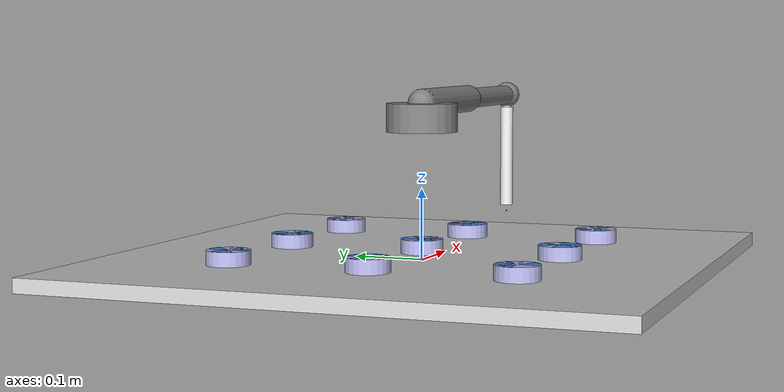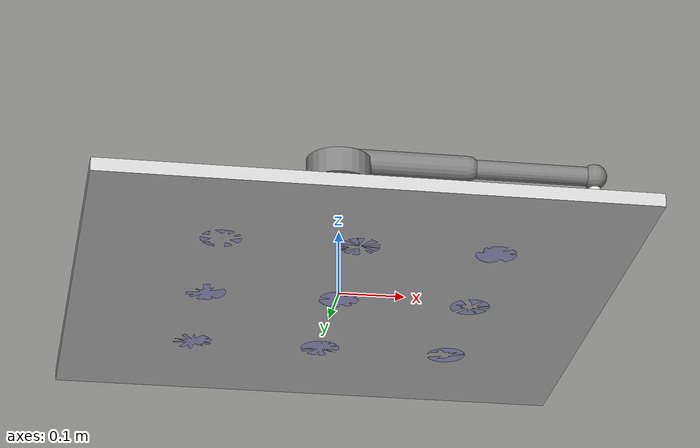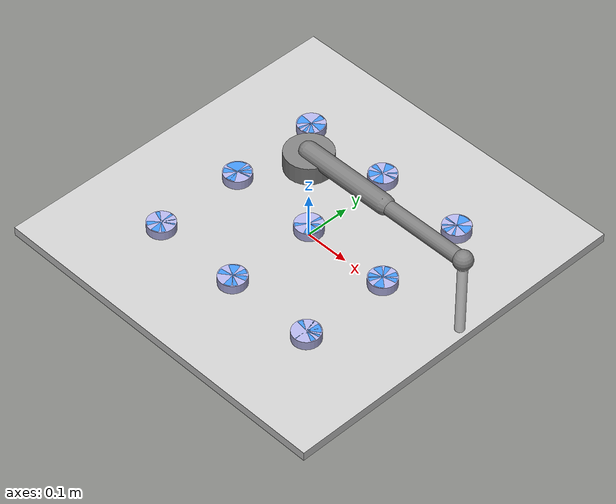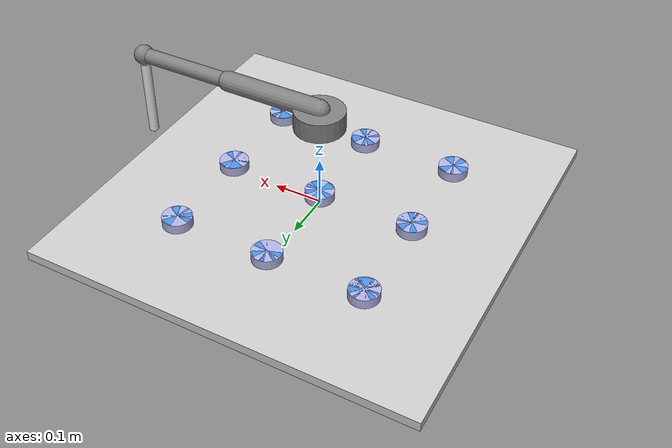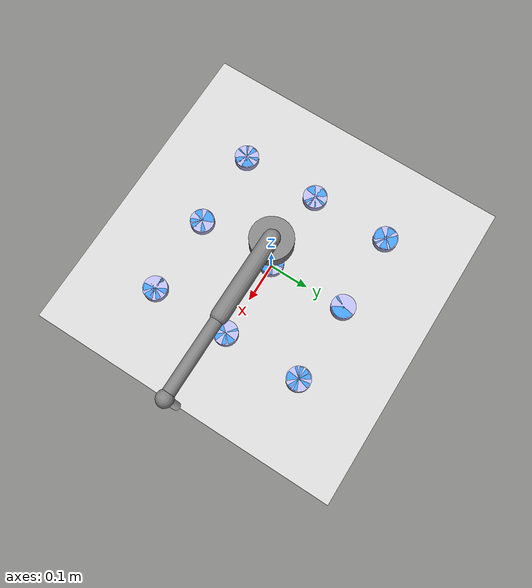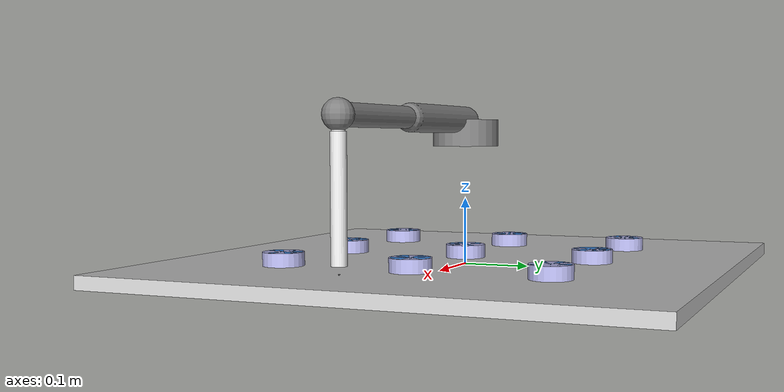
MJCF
<?xml version="1.0" encoding="utf-8"?>
<mujoco model="pipette_system">
    <compiler angle="radian" coordinate="local" meshdir="../meshes" texturedir="../textures"/>
    <option timestep="0.002" iterations="50" solver="Newton" tolerance="1e-10"/>

    <asset>
        <material name="well_material" rgba="0.7 0.7 0.9 1"/>
        <material name="pipette_material" rgba="0.9 0.9 0.9 1"/>
        <material name="liquid_material" rgba="0.2 0.6 1.0 0.8"/>
        <material name="arm_material" rgba="0.5 0.5 0.5 1"/>
        <material name="surface_material" rgba="0.8 0.8 0.8 1"/>
    </asset>

    <worldbody>
        <!-- Lighting and camera -->
        <light directional="true" diffuse=".8 .8 .8" specular=".2 .2 .2" pos="0 0 5" dir="0 0 -1"/>
        <camera name="top_view" pos="0 0 1.5" xyaxes="1 0 0 0 1 0"/>

        <!-- Surface with wells -->
        <body name="surface" pos="0 0 0">
            <geom type="box" size="0.4 0.4 0.01" rgba="0.8 0.8 0.8 1" material="surface_material"/>

            <!-- Wells arranged in a 3x3 grid -->
            <body name="well_1" pos="-0.2 -0.2 0.01">
                <geom name="well_1_geom" type="cylinder" size="0.03 0.02" material="well_material"/>
                <site name="well_1_site" pos="0 0 0" size="0.005"/>
                <!-- Liquid in the well -->
                <geom name="liquid_1" type="cylinder" size="0.028 0.01" pos="0 0 0.01" material="liquid_material"/>
            </body>

            <body name="well_2" pos="0 -0.2 0.01">
                <geom name="well_2_geom" type="cylinder" size="0.03 0.02" material="well_material"/>
                <site name="well_2_site" pos="0 0 0" size="0.005"/>
                <geom name="liquid_2" type="cylinder" size="0.028 0.01" pos="0 0 0.01" material="liquid_material"/>
            </body>

            <body name="well_3" pos="0.2 -0.2 0.01">
                <geom name="well_3_geom" type="cylinder" size="0.03 0.02" material="well_material"/>
                <site name="well_3_site" pos="0 0 0" size="0.005"/>
                <geom name="liquid_3" type="cylinder" size="0.028 0.01" pos="0 0 0.01" material="liquid_material"/>
            </body>

            <body name="well_4" pos="-0.2 0 0.01">
                <geom name="well_4_geom" type="cylinder" size="0.03 0.02" material="well_material"/>
                <site name="well_4_site" pos="0 0 0" size="0.005"/>
                <geom name="liquid_4" type="cylinder" size="0.028 0.01" pos="0 0 0.01" material="liquid_material"/>
            </body>

            <body name="well_5" pos="0 0 0.01">
                <geom name="well_5_geom" type="cylinder" size="0.03 0.02" material="well_material"/>
                <site name="well_5_site" pos="0 0 0" size="0.005"/>
                <geom name="liquid_5" type="cylinder" size="0.028 0.01" pos="0 0 0.01" material="liquid_material"/>
            </body>

            <body name="well_6" pos="0.2 0 0.01">
                <geom name="well_6_geom" type="cylinder" size="0.03 0.02" material="well_material"/>
                <site name="well_6_site" pos="0 0 0" size="0.005"/>
                <geom name="liquid_6" type="cylinder" size="0.028 0.01" pos="0 0 0.01" material="liquid_material"/>
            </body>

            <body name="well_7" pos="-0.2 0.2 0.01">
                <geom name="well_7_geom" type="cylinder" size="0.03 0.02" material="well_material"/>
                <site name="well_7_site" pos="0 0 0" size="0.005"/>
                <geom name="liquid_7" type="cylinder" size="0.028 0.01" pos="0 0 0.01" material="liquid_material"/>
            </body>

            <body name="well_8" pos="0 0.2 0.01">
                <geom name="well_8_geom" type="cylinder" size="0.03 0.02" material="well_material"/>
                <site name="well_8_site" pos="0 0 0" size="0.005"/>
                <geom name="liquid_8" type="cylinder" size="0.028 0.01" pos="0 0 0.01" material="liquid_material"/>
            </body>

            <body name="well_9" pos="0.2 0.2 0.01">
                <geom name="well_9_geom" type="cylinder" size="0.03 0.02" material="well_material"/>
                <site name="well_9_site" pos="0 0 0" size="0.005"/>
                <geom name="liquid_9" type="cylinder" size="0.028 0.01" pos="0 0 0.01" material="liquid_material"/>
            </body>
        </body>

        <!-- Robot arm with 3 joints -->
        <body name="base" pos="0 0 0.2">
            <joint name="base_joint" type="slide" axis="0 0 1" range="-0.1 0.5" damping="5"/>
            <geom name="base_geom" type="cylinder" size="0.05 0.02" material="arm_material"/>

            <body name="arm_1" pos="0 0 0.02">
                <joint name="shoulder" type="hinge" axis="0 1 0" range="-3.14 3.14" damping="1"/>
                <geom name="arm_1_geom" type="capsule" size="0.02" fromto="0 0 0 0.2 0 0" material="arm_material"/>

                <body name="arm_2" pos="0.2 0 0">
                    <joint name="elbow" type="hinge" axis="0 1 0" range="-3.14 3.14" damping="1"/>
                    <geom name="arm_2_geom" type="capsule" size="0.015" fromto="0 0 0 0.2 0 0" material="arm_material"/>

                    <body name="wrist" pos="0.2 0 0">
                        <joint name="wrist_joint" type="ball" range="0 0.6" damping="0.5"/>
                        <geom name="wrist_geom" type="sphere" size="0.02" material="arm_material"/>

                        <!-- Pipette -->
                        <body name="pipette" pos="0 0 -0.05">
                            <joint name="grip" type="hinge" axis="1 0 0" range="0 0.2" damping="0.5"/>
                            <geom name="pipette_body" type="cylinder" size="0.01 0.08" pos="0 0 -0.05" material="pipette_material"/>

                            <!-- Plunger for the pipette -->
                            <body name="plunger" pos="0 0 0.03">
                                <joint name="plunger_joint" type="slide" axis="0 0 1" range="0 0.05" damping="10"/>
                                <geom name="plunger_geom" type="cylinder" size="0.008 0.03" material="pipette_material"/>

                                <!-- Site for detecting if liquid is being held -->
                                <site name="liquid_detector" pos="0 0 -0.17" size="0.001"/>

                                <!-- Liquid in pipette (initially invisible) -->
                                <geom name="pipette_liquid" type="cylinder" size="0.006 0.01" pos="0 0 -0.16" material="liquid_material" rgba="0.2 0.6 1.0 0"/>
                            </body>
                        </body>
                    </body>
                </body>
            </body>
        </body>
    </worldbody>

    <actuator>
        <!-- Joint actuators for the robot arm -->
        <motor name="base_control" joint="base_joint" ctrlrange="-1 1" ctrllimited="true"/>
        <motor name="shoulder_control" joint="shoulder" ctrlrange="-1 1" ctrllimited="true"/>
        <motor name="elbow_control" joint="elbow" ctrlrange="-1 1" ctrllimited="true"/>
        <motor name="wrist_control" joint="wrist_joint" ctrlrange="-1 1" ctrllimited="true"/>

        <!-- Pipette specific actuators -->
        <motor name="grip_control" joint="grip" ctrlrange="0 1" ctrllimited="true"/>
        <motor name="plunger_control" joint="plunger_joint" ctrlrange="0 1" ctrllimited="true"/>
    </actuator>

    <sensor>
        <!-- Position sensors for all joints -->
        <jointpos name="base_pos" joint="base_joint"/>
        <jointpos name="shoulder_pos" joint="shoulder"/>
        <jointpos name="elbow_pos" joint="elbow"/>
        <jointpos name="grip_pos" joint="grip"/>
        <jointpos name="plunger_pos" joint="plunger_joint"/>

    </sensor>
</mujoco>
